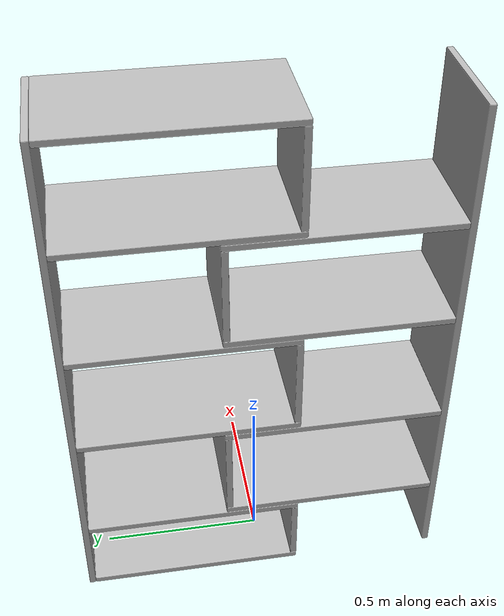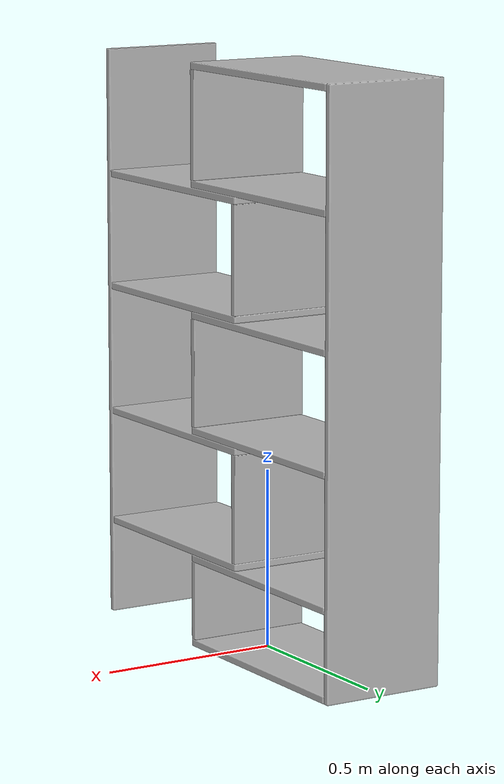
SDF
<?xml version='1.0'?>
<sdf version='1.4'>
  <model name='293'>
    <pose>0 0 0 0 0 0</pose>
    <static>true</static>
    <link name='link'>
      <collision name='collision'>
        <pose>0 0 0 0 0 0</pose>
        <geometry>
          <box>
            <size>0.35 1.15 2</size>
          </box>
        </geometry>
      </collision>
      <visual name='visual'>
        <pose>0 0 0 0 0 0</pose>
        <geometry>
          <mesh><uri>model://293/293.dae</uri></mesh>
        </geometry>
      </visual>
    </link>
  </model>
</sdf>
